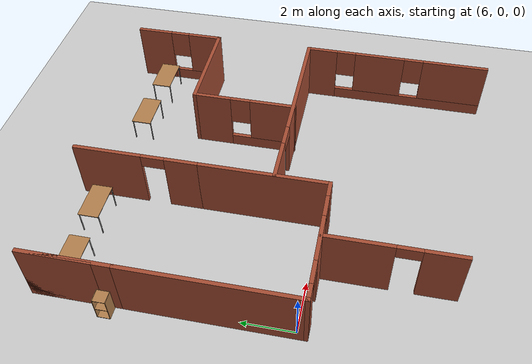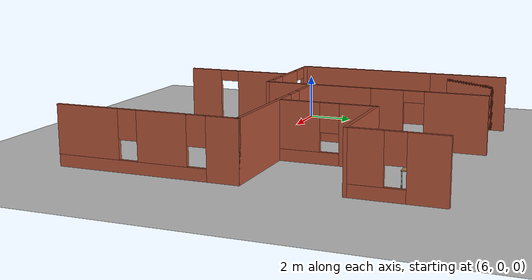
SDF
<sdf version="1.6">
 <world name="default">
  <model name="ground_plane">
   <static>1</static>
   <link name="link">
    <collision name="collision">
     <geometry><plane><normal>0 0 1</normal><size>100 100</size></plane></geometry>
     <surface>
      <contact><collide_bitmask>65535</collide_bitmask></contact>
      <friction><ode><mu>100</mu><mu2>50</mu2></ode></friction>
     </surface>
    </collision>
    <visual name="visual">
     <cast_shadows>0</cast_shadows>
     <geometry><plane><normal>0 0 1</normal><size>100 100</size></plane></geometry>
     <material>
      <script><uri>file://media/materials/scripts/gazebo.material</uri><name>Gazebo/Grey</name></script>
     </material>
    </visual>
   </link>
  </model>
  <model name="office">
   <pose>2.35048 -0.469027 0 0 -0 0</pose>
   <link name="Wall_151">
    <pose>15.9233 8.02933 0 0 0 -1.5708</pose>
    <visual name="Wall_151_Visual_0">
     <pose>-1.12763 0 1.25 0 -0 0</pose>
     <geometry><box><size>1.49474 0.15 2.5</size></box></geometry>
     <material>
      <script><uri>file://media/materials/scripts/gazebo.material</uri><name>Gazebo/Bricks</name></script>
      <ambient>1 1 1 1</ambient>
     </material>
     <meta><layer>0</layer></meta>
    </visual>
    <collision name="Wall_151_Collision_0">
     <geometry><box><size>1.49474 0.15 2.5</size></box></geometry>
     <pose>-1.12763 0 1.25 0 -0 0</pose>
    </collision>
    <visual name="Wall_151_Visual_1">
     <pose>0.747372 0 0.25 0 -0 0</pose>
     <geometry><box><size>2.25526 0.15 0.5</size></box></geometry>
     <material>
      <script><uri>file://media/materials/scripts/gazebo.material</uri><name>Gazebo/Bricks</name></script>
      <ambient>1 1 1 1</ambient>
     </material>
     <meta><layer>0</layer></meta>
    </visual>
    <collision name="Wall_151_Collision_1">
     <geometry><box><size>2.25526 0.15 0.5</size></box></geometry>
     <pose>0.747372 0 0.25 0 -0 0</pose>
    </collision>
    <visual name="Wall_151_Visual_2">
     <pose>1.14737 0 1.5 0 -0 0</pose>
     <geometry><box><size>1.45526 0.15 2</size></box></geometry>
     <material>
      <script><uri>file://media/materials/scripts/gazebo.material</uri><name>Gazebo/Bricks</name></script>
      <ambient>1 1 1 1</ambient>
     </material>
     <meta><layer>0</layer></meta>
    </visual>
    <collision name="Wall_151_Collision_2">
     <geometry><box><size>1.45526 0.15 2</size></box></geometry>
     <pose>1.14737 0 1.5 0 -0 0</pose>
    </collision>
    <visual name="Wall_151_Visual_3">
     <pose>0.019743 0 1.9 0 -0 0</pose>
     <geometry><box><size>0.8 0.15 1.2</size></box></geometry>
     <material>
      <script><uri>file://media/materials/scripts/gazebo.material</uri><name>Gazebo/Bricks</name></script>
      <ambient>1 1 1 1</ambient>
     </material>
     <meta><layer>0</layer></meta>
    </visual>
    <collision name="Wall_151_Collision_3">
     <geometry><box><size>0.8 0.15 1.2</size></box></geometry>
     <pose>0.019743 0 1.9 0 -0 0</pose>
    </collision>
   </link>
   <link name="Wall_152">
    <collision name="Wall_152_Collision">
     <geometry><box><size>4 0.15 2.5</size></box></geometry>
     <pose>0 0 1.25 0 -0 0</pose>
    </collision>
    <visual name="Wall_152_Visual">
     <pose>0 0 1.25 0 -0 0</pose>
     <geometry><box><size>4 0.15 2.5</size></box></geometry>
     <material>
      <script><uri>file://media/materials/scripts/gazebo.material</uri><name>Gazebo/Bricks</name></script>
      <ambient>1 1 1 1</ambient>
     </material>
     <meta><layer>0</layer></meta>
    </visual>
    <pose>13.9983 6.22933 0 0 -0 3.14159</pose>
   </link>
   <link name="Wall_156">
    <pose>12.0733 4.17933 0 0 0 -1.5708</pose>
    <visual name="Wall_156_Visual_0">
     <pose>-1.33794 0 1.25 0 -0 0</pose>
     <geometry><box><size>1.57411 0.15 2.5</size></box></geometry>
     <material>
      <script><uri>file://media/materials/scripts/gazebo.material</uri><name>Gazebo/Bricks</name></script>
      <ambient>1 1 1 1</ambient>
     </material>
     <meta><layer>0</layer></meta>
    </visual>
    <collision name="Wall_156_Collision_0">
     <geometry><box><size>1.57411 0.15 2.5</size></box></geometry>
     <pose>-1.33794 0 1.25 0 -0 0</pose>
    </collision>
    <visual name="Wall_156_Visual_1">
     <pose>0.787055 0 0.25 0 -0 0</pose>
     <geometry><box><size>2.67589 0.15 0.5</size></box></geometry>
     <material>
      <script><uri>file://media/materials/scripts/gazebo.material</uri><name>Gazebo/Bricks</name></script>
      <ambient>1 1 1 1</ambient>
     </material>
     <meta><layer>0</layer></meta>
    </visual>
    <collision name="Wall_156_Collision_1">
     <geometry><box><size>2.67589 0.15 0.5</size></box></geometry>
     <pose>0.787055 0 0.25 0 -0 0</pose>
    </collision>
    <visual name="Wall_156_Visual_2">
     <pose>1.18705 0 1.5 0 -0 0</pose>
     <geometry><box><size>1.87589 0.15 2</size></box></geometry>
     <material>
      <script><uri>file://media/materials/scripts/gazebo.material</uri><name>Gazebo/Bricks</name></script>
      <ambient>1 1 1 1</ambient>
     </material>
     <meta><layer>0</layer></meta>
    </visual>
    <collision name="Wall_156_Collision_2">
     <geometry><box><size>1.87589 0.15 2</size></box></geometry>
     <pose>1.18705 0 1.5 0 -0 0</pose>
    </collision>
    <visual name="Wall_156_Visual_3">
     <pose>-0.150889 0 1.9 0 -0 0</pose>
     <geometry><box><size>0.8 0.15 1.2</size></box></geometry>
     <material>
      <script><uri>file://media/materials/scripts/gazebo.material</uri><name>Gazebo/Bricks</name></script>
      <ambient>1 1 1 1</ambient>
     </material>
     <meta><layer>0</layer></meta>
    </visual>
    <collision name="Wall_156_Collision_3">
     <geometry><box><size>0.8 0.15 1.2</size></box></geometry>
     <pose>-0.150889 0 1.9 0 -0 0</pose>
    </collision>
   </link>
   <link name="Wall_16">
    <pose>8.32342 7.4043 0 0 0 -1.57075</pose>
    <visual name="Wall_16_Visual_0">
     <pose>-1.16357 0 1.25 0 -0 0</pose>
     <geometry><box><size>2.67286 0.15 2.5</size></box></geometry>
     <material>
      <script><uri>file://media/materials/scripts/gazebo.material</uri><name>Gazebo/Bricks</name></script>
      <ambient>0 0 1 1</ambient>
     </material>
     <meta><layer>0</layer></meta>
    </visual>
    <collision name="Wall_16_Collision_0">
     <geometry><box><size>2.67286 0.15 2.5</size></box></geometry>
     <pose>-1.16357 0 1.25 0 -0 0</pose>
    </collision>
    <visual name="Wall_16_Visual_1">
     <pose>1.78643 0 1.25 0 -0 0</pose>
     <geometry><box><size>1.42714 0.15 2.5</size></box></geometry>
     <material>
      <script><uri>file://media/materials/scripts/gazebo.material</uri><name>Gazebo/Bricks</name></script>
      <ambient>0 0 1 1</ambient>
     </material>
     <meta><layer>0</layer></meta>
    </visual>
    <collision name="Wall_16_Collision_1">
     <geometry><box><size>1.42714 0.15 2.5</size></box></geometry>
     <pose>1.78643 0 1.25 0 -0 0</pose>
    </collision>
    <visual name="Wall_16_Visual_2">
     <pose>0.622857 0 2.25 0 -0 0</pose>
     <geometry><box><size>0.9 0.15 0.5</size></box></geometry>
     <material>
      <script><uri>file://media/materials/scripts/gazebo.material</uri><name>Gazebo/Bricks</name></script>
      <ambient>0 0 1 1</ambient>
     </material>
     <meta><layer>0</layer></meta>
    </visual>
    <collision name="Wall_16_Collision_2">
     <geometry><box><size>0.9 0.15 0.5</size></box></geometry>
     <pose>0.622857 0 2.25 0 -0 0</pose>
    </collision>
   </link>
   <link name="Wall_17">
    <collision name="Wall_17_Collision">
     <geometry><box><size>5 0.15 2.5</size></box></geometry>
     <pose>0 0 1.25 0 -0 0</pose>
    </collision>
    <visual name="Wall_17_Visual">
     <pose>0 0 1.25 0 -0 0</pose>
     <geometry><box><size>5 0.15 2.5</size></box></geometry>
     <material>
      <script><uri>file://media/materials/scripts/gazebo.material</uri><name>Gazebo/Bricks</name></script>
      <ambient>0 0 1 1</ambient>
     </material>
     <meta><layer>0</layer></meta>
    </visual>
    <pose>8.32352 2.55427 0 0 0 -1.5708</pose>
   </link>
   <link name="Wall_18">
    <pose>5.89852 0.129271 0 0 -0 3.14159</pose>
    <visual name="Wall_18_Visual_0">
     <pose>-2.16272 0 1.25 0 -0 0</pose>
     <geometry><box><size>0.674563 0.15 2.5</size></box></geometry>
     <material>
      <script><uri>file://media/materials/scripts/gazebo.material</uri><name>Gazebo/Bricks</name></script>
      <ambient>0 0 1 1</ambient>
     </material>
     <meta><layer>0</layer></meta>
    </visual>
    <collision name="Wall_18_Collision_0">
     <geometry><box><size>0.674563 0.15 2.5</size></box></geometry>
     <pose>-2.16272 0 1.25 0 -0 0</pose>
    </collision>
    <visual name="Wall_18_Visual_1">
     <pose>0.007773 0 1.25 0 -0 0</pose>
     <geometry><box><size>1.86642 0.15 2.5</size></box></geometry>
     <material>
      <script><uri>file://media/materials/scripts/gazebo.material</uri><name>Gazebo/Bricks</name></script>
      <ambient>0 0 1 1</ambient>
     </material>
     <meta><layer>0</layer></meta>
    </visual>
    <collision name="Wall_18_Collision_1">
     <geometry><box><size>1.86642 0.15 2.5</size></box></geometry>
     <pose>0.007773 0 1.25 0 -0 0</pose>
    </collision>
    <visual name="Wall_18_Visual_2">
     <pose>2.17049 0 1.25 0 -0 0</pose>
     <geometry><box><size>0.659016 0.15 2.5</size></box></geometry>
     <material>
      <script><uri>file://media/materials/scripts/gazebo.material</uri><name>Gazebo/Bricks</name></script>
      <ambient>0 0 1 1</ambient>
     </material>
     <meta><layer>0</layer></meta>
    </visual>
    <collision name="Wall_18_Collision_2">
     <geometry><box><size>0.659016 0.15 2.5</size></box></geometry>
     <pose>2.17049 0 1.25 0 -0 0</pose>
    </collision>
    <visual name="Wall_18_Visual_3">
     <pose>-1.37544 0 2.25 0 -0 0</pose>
     <geometry><box><size>0.9 0.15 0.5</size></box></geometry>
     <material>
      <script><uri>file://media/materials/scripts/gazebo.material</uri><name>Gazebo/Bricks</name></script>
      <ambient>0 0 1 1</ambient>
     </material>
     <meta><layer>0</layer></meta>
    </visual>
    <collision name="Wall_18_Collision_3">
     <geometry><box><size>0.9 0.15 0.5</size></box></geometry>
     <pose>-1.37544 0 2.25 0 -0 0</pose>
    </collision>
    <visual name="Wall_18_Visual_4">
     <pose>1.39098 0 2.25 0 -0 0</pose>
     <geometry><box><size>0.9 0.15 0.5</size></box></geometry>
     <material>
      <script><uri>file://media/materials/scripts/gazebo.material</uri><name>Gazebo/Bricks</name></script>
      <ambient>0 0 1 1</ambient>
     </material>
     <meta><layer>0</layer></meta>
    </visual>
    <collision name="Wall_18_Collision_4">
     <geometry><box><size>0.9 0.15 0.5</size></box></geometry>
     <pose>1.39098 0 2.25 0 -0 0</pose>
    </collision>
   </link>
   <link name="Wall_19">
    <collision name="Wall_19_Collision">
     <geometry><box><size>6.5 0.15 2.5</size></box></geometry>
     <pose>0 0 1.25 0 -0 0</pose>
    </collision>
    <visual name="Wall_19_Visual">
     <pose>0 0 1.25 0 -0 0</pose>
     <geometry><box><size>6.5 0.15 2.5</size></box></geometry>
     <material>
      <script><uri>file://media/materials/scripts/gazebo.material</uri><name>Gazebo/Bricks</name></script>
      <ambient>0 0 1 1</ambient>
     </material>
     <meta><layer>0</layer></meta>
    </visual>
    <pose>3.47352 3.30427 0 0 -0 1.5708</pose>
   </link>
   <link name="Wall_20">
    <pose>3.47342 8.1543 0 0 -0 1.57086</pose>
    <visual name="Wall_20_Visual_0">
     <pose>0 0 1.25 0 -0 0</pose>
     <geometry><box><size>3.5 0.15 2.5</size></box></geometry>
     <material>
      <script><uri>file://media/materials/scripts/gazebo.material</uri><name>Gazebo/Bricks</name></script>
      <ambient>0 0 1 1</ambient>
     </material>
     <meta><layer>0</layer></meta>
    </visual>
    <collision name="Wall_20_Collision_0">
     <geometry><box><size>3.5 0.15 2.5</size></box></geometry>
     <pose>0 0 1.25 0 -0 0</pose>
    </collision>
    <visual name="Wall_20_Visual_1">
     <pose>0.400263 0 1.25 0 -0 0</pose>
     <geometry><box><size>2.69948 0.15 2.5</size></box></geometry>
     <material>
      <script><uri>file://media/materials/scripts/gazebo.material</uri><name>Gazebo/Bricks</name></script>
      <ambient>0 0 1 1</ambient>
     </material>
     <meta><layer>0</layer></meta>
    </visual>
    <collision name="Wall_20_Collision_1">
     <geometry><box><size>2.69948 0.15 2.5</size></box></geometry>
     <pose>0.400263 0 1.25 0 -0 0</pose>
    </collision>
   </link>
   <link name="Wall_22">
    <pose>5.99314 -2.33064 0 0 0 -1.5708</pose>
    <visual name="Wall_22_Visual_0">
     <pose>-1.21642 0 1.25 0 -0 0</pose>
     <geometry><box><size>2.56715 0.15 2.5</size></box></geometry>
     <material>
      <script><uri>file://media/materials/scripts/gazebo.material</uri><name>Gazebo/Bricks</name></script>
      <ambient>1 1 1 1</ambient>
     </material>
     <meta><layer>0</layer></meta>
    </visual>
    <collision name="Wall_22_Collision_0">
     <geometry><box><size>2.56715 0.15 2.5</size></box></geometry>
     <pose>-1.21642 0 1.25 0 -0 0</pose>
    </collision>
    <visual name="Wall_22_Visual_1">
     <pose>1.73358 0 1.25 0 -0 0</pose>
     <geometry><box><size>1.53285 0.15 2.5</size></box></geometry>
     <material>
      <script><uri>file://media/materials/scripts/gazebo.material</uri><name>Gazebo/Bricks</name></script>
      <ambient>1 1 1 1</ambient>
     </material>
     <meta><layer>0</layer></meta>
    </visual>
    <collision name="Wall_22_Collision_1">
     <geometry><box><size>1.53285 0.15 2.5</size></box></geometry>
     <pose>1.73358 0 1.25 0 -0 0</pose>
    </collision>
    <visual name="Wall_22_Visual_2">
     <pose>0.517152 0 2.25 0 -0 0</pose>
     <geometry><box><size>0.9 0.15 0.5</size></box></geometry>
     <material>
      <script><uri>file://media/materials/scripts/gazebo.material</uri><name>Gazebo/Bricks</name></script>
      <ambient>1 1 1 1</ambient>
     </material>
     <meta><layer>0</layer></meta>
    </visual>
    <collision name="Wall_22_Collision_2">
     <geometry><box><size>0.9 0.15 0.5</size></box></geometry>
     <pose>0.517152 0 2.25 0 -0 0</pose>
    </collision>
   </link>
   <link name="Wall_39">
    <pose>12.1535 2.1646 0 0 -0 0</pose>
    <visual name="Wall_39_Visual_0">
     <pose>-3.02338 0 1.25 0 -0 0</pose>
     <geometry><box><size>1.70324 0.15 2.5</size></box></geometry>
     <material>
      <script><uri>file://media/materials/scripts/gazebo.material</uri><name>Gazebo/Bricks</name></script>
      <ambient>1 1 1 1</ambient>
     </material>
     <meta><layer>0</layer></meta>
    </visual>
    <collision name="Wall_39_Collision_0">
     <geometry><box><size>1.70324 0.15 2.5</size></box></geometry>
     <pose>-3.02338 0 1.25 0 -0 0</pose>
    </collision>
    <visual name="Wall_39_Visual_1">
     <pose>1.30162 0 1.25 0 -0 0</pose>
     <geometry><box><size>5.14676 0.15 2.5</size></box></geometry>
     <material>
      <script><uri>file://media/materials/scripts/gazebo.material</uri><name>Gazebo/Bricks</name></script>
      <ambient>1 1 1 1</ambient>
     </material>
     <meta><layer>0</layer></meta>
    </visual>
    <collision name="Wall_39_Collision_1">
     <geometry><box><size>5.14676 0.15 2.5</size></box></geometry>
     <pose>1.30162 0 1.25 0 -0 0</pose>
    </collision>
    <visual name="Wall_39_Visual_2">
     <pose>-1.72176 0 2.25 0 -0 0</pose>
     <geometry><box><size>0.9 0.15 0.5</size></box></geometry>
     <material>
      <script><uri>file://media/materials/scripts/gazebo.material</uri><name>Gazebo/Bricks</name></script>
      <ambient>1 1 1 1</ambient>
     </material>
     <meta><layer>0</layer></meta>
    </visual>
    <collision name="Wall_39_Collision_2">
     <geometry><box><size>0.9 0.15 0.5</size></box></geometry>
     <pose>-1.72176 0 2.25 0 -0 0</pose>
    </collision>
   </link>
   <link name="Wall_40">
    <pose>15.9535 -1.6354 0 0 0 -1.5708</pose>
    <visual name="Wall_40_Visual_0">
     <pose>-3.20987 0 1.25 0 -0 0</pose>
     <geometry><box><size>1.33026 0.15 2.5</size></box></geometry>
     <material>
      <script><uri>file://media/materials/scripts/gazebo.material</uri><name>Gazebo/Bricks</name></script>
      <ambient>1 1 1 1</ambient>
     </material>
     <meta><layer>0</layer></meta>
    </visual>
    <collision name="Wall_40_Collision_0">
     <geometry><box><size>1.33026 0.15 2.5</size></box></geometry>
     <pose>-3.20987 0 1.25 0 -0 0</pose>
    </collision>
    <visual name="Wall_40_Visual_1">
     <pose>0.665129 0 0.25 0 -0 0</pose>
     <geometry><box><size>6.41974 0.15 0.5</size></box></geometry>
     <material>
      <script><uri>file://media/materials/scripts/gazebo.material</uri><name>Gazebo/Bricks</name></script>
      <ambient>1 1 1 1</ambient>
     </material>
     <meta><layer>0</layer></meta>
    </visual>
    <collision name="Wall_40_Collision_1">
     <geometry><box><size>6.41974 0.15 0.5</size></box></geometry>
     <pose>0.665129 0 0.25 0 -0 0</pose>
    </collision>
    <visual name="Wall_40_Visual_2">
     <pose>-0.694223 0 1.5 0 -0 0</pose>
     <geometry><box><size>2.10104 0.15 2</size></box></geometry>
     <material>
      <script><uri>file://media/materials/scripts/gazebo.material</uri><name>Gazebo/Bricks</name></script>
      <ambient>1 1 1 1</ambient>
     </material>
     <meta><layer>0</layer></meta>
    </visual>
    <collision name="Wall_40_Collision_2">
     <geometry><box><size>2.10104 0.15 2</size></box></geometry>
     <pose>-0.694223 0 1.5 0 -0 0</pose>
    </collision>
    <visual name="Wall_40_Visual_3">
     <pose>2.51565 0 1.5 0 -0 0</pose>
     <geometry><box><size>2.7187 0.15 2</size></box></geometry>
     <material>
      <script><uri>file://media/materials/scripts/gazebo.material</uri><name>Gazebo/Bricks</name></script>
      <ambient>1 1 1 1</ambient>
     </material>
     <meta><layer>0</layer></meta>
    </visual>
    <collision name="Wall_40_Collision_3">
     <geometry><box><size>2.7187 0.15 2</size></box></geometry>
     <pose>2.51565 0 1.5 0 -0 0</pose>
    </collision>
    <visual name="Wall_40_Visual_4">
     <pose>-2.14474 0 1.9 0 -0 0</pose>
     <geometry><box><size>0.8 0.15 1.2</size></box></geometry>
     <material>
      <script><uri>file://media/materials/scripts/gazebo.material</uri><name>Gazebo/Bricks</name></script>
      <ambient>1 1 1 1</ambient>
     </material>
     <meta><layer>0</layer></meta>
    </visual>
    <collision name="Wall_40_Collision_4">
     <geometry><box><size>0.8 0.15 1.2</size></box></geometry>
     <pose>-2.14474 0 1.9 0 -0 0</pose>
    </collision>
    <visual name="Wall_40_Visual_5">
     <pose>0.756297 0 1.9 0 -0 0</pose>
     <geometry><box><size>0.8 0.15 1.2</size></box></geometry>
     <material>
      <script><uri>file://media/materials/scripts/gazebo.material</uri><name>Gazebo/Bricks</name></script>
      <ambient>1 1 1 1</ambient>
     </material>
     <meta><layer>0</layer></meta>
    </visual>
    <collision name="Wall_40_Collision_5">
     <geometry><box><size>0.8 0.15 1.2</size></box></geometry>
     <pose>0.756297 0 1.9 0 -0 0</pose>
    </collision>
   </link>
   <static>1</static>
  </model>
  <model name="cabinet">
   <static>1</static>
   <link name="cabinet_bottom_plate">
    <inertial>
     <pose>0 0 -1 0 -0 0</pose>
     <inertia><ixx>2.05</ixx><ixy>0</ixy><ixz>0</ixz><iyy>2.05</iyy><iyz>0</iyz><izz>2.05</izz></inertia>
     <mass>25</mass>
    </inertial>
    <collision name="cabinet_bottom_plate_geom">
     <pose>0 0 0.01 0 -0 0</pose>
     <geometry><box><size>0.45 0.45 0.02</size></box></geometry>
    </collision>
    <visual name="cabinet_bottom_plate_geom_visual">
     <pose>0 0 0.01 0 -0 0</pose>
     <geometry><box><size>0.45 0.45 0.02</size></box></geometry>
     <material>
      <script><uri>file://media/materials/scripts/gazebo.material</uri><name>Gazebo/Wood</name></script>
     </material>
    </visual>
    <collision name="cabinet_bottom_plate_geom_cabinet_back_plate">
     <pose>0.235 0 0.51 0 -0 0</pose>
     <geometry><box><size>0.02 0.45 1.02</size></box></geometry>
    </collision>
    <visual name="cabinet_bottom_plate_geom_cabinet_back_plate_visual">
     <pose>0.235 0 0.51 0 -0 0</pose>
     <geometry><box><size>0.02 0.45 1.02</size></box></geometry>
     <material>
      <script><uri>file://media/materials/scripts/gazebo.material</uri><name>Gazebo/Wood</name></script>
     </material>
    </visual>
    <collision name="cabinet_bottom_plate_geom_cabinet_left_plate">
     <pose>0 0.235 0.51 0 -0 0</pose>
     <geometry><box><size>0.45 0.02 1.02</size></box></geometry>
    </collision>
    <visual name="cabinet_bottom_plate_geom_cabinet_left_plate_visual">
     <pose>0 0.235 0.51 0 -0 0</pose>
     <geometry><box><size>0.45 0.02 1.02</size></box></geometry>
     <material>
      <script><uri>file://media/materials/scripts/gazebo.material</uri><name>Gazebo/Wood</name></script>
     </material>
    </visual>
    <collision name="cabinet_bottom_plate_geom_cabinet_middle_plate">
     <pose>0 0 0.51 0 -0 0</pose>
     <geometry><box><size>0.45 0.45 0.02</size></box></geometry>
    </collision>
    <visual name="cabinet_bottom_plate_geom_cabinet_middle_plate_visual">
     <pose>0 0 0.51 0 -0 0</pose>
     <geometry><box><size>0.45 0.45 0.02</size></box></geometry>
     <material>
      <script><uri>file://media/materials/scripts/gazebo.material</uri><name>Gazebo/Wood</name></script>
     </material>
    </visual>
    <collision name="cabinet_bottom_plate_geom_cabinet_right_plate">
     <pose>0 -0.235 0.51 0 -0 0</pose>
     <geometry><box><size>0.45 0.02 1.02</size></box></geometry>
    </collision>
    <visual name="cabinet_bottom_plate_geom_cabinet_right_plate_visual">
     <pose>0 -0.235 0.51 0 -0 0</pose>
     <geometry><box><size>0.45 0.02 1.02</size></box></geometry>
     <material>
      <script><uri>file://media/materials/scripts/gazebo.material</uri><name>Gazebo/Wood</name></script>
     </material>
    </visual>
    <collision name="cabinet_bottom_plate_geom_cabinet_top_plate">
     <pose>0 0 1.01 0 -0 0</pose>
     <geometry><box><size>0.45 0.45 0.02</size></box></geometry>
    </collision>
    <visual name="cabinet_bottom_plate_geom_cabinet_top_plate_visual">
     <pose>0 0 1.01 0 -0 0</pose>
     <geometry><box><size>0.45 0.45 0.02</size></box></geometry>
     <material>
      <script><uri>file://media/materials/scripts/gazebo.material</uri><name>Gazebo/Wood</name></script>
     </material>
    </visual>
   </link>
   <pose>5.5098 6.59656 0 0 -0 0</pose>
  </model>
  <model name="table_clone_0">
   <static>1</static>
   <link name="link">
    <collision name="surface">
     <pose>0 0 1 0 -0 0</pose>
     <geometry><box><size>1.5 0.8 0.03</size></box></geometry>
     <surface><friction><ode><mu>0.6</mu><mu2>0.6</mu2></ode></friction></surface>
    </collision>
    <visual name="visual1">
     <pose>0 0 1 0 -0 0</pose>
     <geometry><box><size>1.5 0.8 0.03</size></box></geometry>
     <material>
      <script><uri>file://media/materials/scripts/gazebo.material</uri><name>Gazebo/Wood</name></script>
     </material>
    </visual>
    <collision name="front_left_leg">
     <pose>0.68 0.38 0.5 0 -0 0</pose>
     <geometry><cylinder><radius>0.02</radius><length>1</length></cylinder></geometry>
    </collision>
    <visual name="front_left_leg">
     <pose>0.68 0.38 0.5 0 -0 0</pose>
     <geometry><cylinder><radius>0.02</radius><length>1</length></cylinder></geometry>
     <material>
      <script><uri>file://media/materials/scripts/gazebo.material</uri><name>Gazebo/Grey</name></script>
     </material>
    </visual>
    <collision name="front_right_leg">
     <pose>0.68 -0.38 0.5 0 -0 0</pose>
     <geometry><cylinder><radius>0.02</radius><length>1</length></cylinder></geometry>
    </collision>
    <visual name="front_right_leg">
     <pose>0.68 -0.38 0.5 0 -0 0</pose>
     <geometry><cylinder><radius>0.02</radius><length>1</length></cylinder></geometry>
     <material>
      <script><uri>file://media/materials/scripts/gazebo.material</uri><name>Gazebo/Grey</name></script>
     </material>
    </visual>
    <collision name="back_right_leg">
     <pose>-0.68 -0.38 0.5 0 -0 0</pose>
     <geometry><cylinder><radius>0.02</radius><length>1</length></cylinder></geometry>
    </collision>
    <visual name="back_right_leg">
     <pose>-0.68 -0.38 0.5 0 -0 0</pose>
     <geometry><cylinder><radius>0.02</radius><length>1</length></cylinder></geometry>
     <material>
      <script><uri>file://media/materials/scripts/gazebo.material</uri><name>Gazebo/Grey</name></script>
     </material>
    </visual>
    <collision name="back_left_leg">
     <pose>-0.68 0.38 0.5 0 -0 0</pose>
     <geometry><cylinder><radius>0.02</radius><length>1</length></cylinder></geometry>
    </collision>
    <visual name="back_left_leg">
     <pose>-0.68 0.38 0.5 0 -0 0</pose>
     <geometry><cylinder><radius>0.02</radius><length>1</length></cylinder></geometry>
     <material>
      <script><uri>file://media/materials/scripts/gazebo.material</uri><name>Gazebo/Grey</name></script>
     </material>
    </visual>
   </link>
   <pose>6.98966 8.26719 0 0 -0 0</pose>
  </model>
  <model name="table_clone_1">
   <static>1</static>
   <link name="link">
    <collision name="surface">
     <pose>0 0 1 0 -0 0</pose>
     <geometry><box><size>1.5 0.8 0.03</size></box></geometry>
     <surface><friction><ode><mu>0.6</mu><mu2>0.6</mu2></ode></friction></surface>
    </collision>
    <visual name="visual1">
     <pose>0 0 1 0 -0 0</pose>
     <geometry><box><size>1.5 0.8 0.03</size></box></geometry>
     <material>
      <script><uri>file://media/materials/scripts/gazebo.material</uri><name>Gazebo/Wood</name></script>
     </material>
    </visual>
    <collision name="front_left_leg">
     <pose>0.68 0.38 0.5 0 -0 0</pose>
     <geometry><cylinder><radius>0.02</radius><length>1</length></cylinder></geometry>
    </collision>
    <visual name="front_left_leg">
     <pose>0.68 0.38 0.5 0 -0 0</pose>
     <geometry><cylinder><radius>0.02</radius><length>1</length></cylinder></geometry>
     <material>
      <script><uri>file://media/materials/scripts/gazebo.material</uri><name>Gazebo/Grey</name></script>
     </material>
    </visual>
    <collision name="front_right_leg">
     <pose>0.68 -0.38 0.5 0 -0 0</pose>
     <geometry><cylinder><radius>0.02</radius><length>1</length></cylinder></geometry>
    </collision>
    <visual name="front_right_leg">
     <pose>0.68 -0.38 0.5 0 -0 0</pose>
     <geometry><cylinder><radius>0.02</radius><length>1</length></cylinder></geometry>
     <material>
      <script><uri>file://media/materials/scripts/gazebo.material</uri><name>Gazebo/Grey</name></script>
     </material>
    </visual>
    <collision name="back_right_leg">
     <pose>-0.68 -0.38 0.5 0 -0 0</pose>
     <geometry><cylinder><radius>0.02</radius><length>1</length></cylinder></geometry>
    </collision>
    <visual name="back_right_leg">
     <pose>-0.68 -0.38 0.5 0 -0 0</pose>
     <geometry><cylinder><radius>0.02</radius><length>1</length></cylinder></geometry>
     <material>
      <script><uri>file://media/materials/scripts/gazebo.material</uri><name>Gazebo/Grey</name></script>
     </material>
    </visual>
    <collision name="back_left_leg">
     <pose>-0.68 0.38 0.5 0 -0 0</pose>
     <geometry><cylinder><radius>0.02</radius><length>1</length></cylinder></geometry>
    </collision>
    <visual name="back_left_leg">
     <pose>-0.68 0.38 0.5 0 -0 0</pose>
     <geometry><cylinder><radius>0.02</radius><length>1</length></cylinder></geometry>
     <material>
      <script><uri>file://media/materials/scripts/gazebo.material</uri><name>Gazebo/Grey</name></script>
     </material>
    </visual>
   </link>
   <pose>9.41994 8.3508 0 0 -0 0</pose>
  </model>
  <model name="table_clone_2">
   <static>1</static>
   <link name="link">
    <collision name="surface">
     <pose>0 0 1 0 -0 0</pose>
     <geometry><box><size>1.5 0.8 0.03</size></box></geometry>
     <surface><friction><ode><mu>0.6</mu><mu2>0.6</mu2></ode></friction></surface>
    </collision>
    <visual name="visual1">
     <pose>0 0 1 0 -0 0</pose>
     <geometry><box><size>1.5 0.8 0.03</size></box></geometry>
     <material>
      <script><uri>file://media/materials/scripts/gazebo.material</uri><name>Gazebo/Wood</name></script>
     </material>
    </visual>
    <collision name="front_left_leg">
     <pose>0.68 0.38 0.5 0 -0 0</pose>
     <geometry><cylinder><radius>0.02</radius><length>1</length></cylinder></geometry>
    </collision>
    <visual name="front_left_leg">
     <pose>0.68 0.38 0.5 0 -0 0</pose>
     <geometry><cylinder><radius>0.02</radius><length>1</length></cylinder></geometry>
     <material>
      <script><uri>file://media/materials/scripts/gazebo.material</uri><name>Gazebo/Grey</name></script>
     </material>
    </visual>
    <collision name="front_right_leg">
     <pose>0.68 -0.38 0.5 0 -0 0</pose>
     <geometry><cylinder><radius>0.02</radius><length>1</length></cylinder></geometry>
    </collision>
    <visual name="front_right_leg">
     <pose>0.68 -0.38 0.5 0 -0 0</pose>
     <geometry><cylinder><radius>0.02</radius><length>1</length></cylinder></geometry>
     <material>
      <script><uri>file://media/materials/scripts/gazebo.material</uri><name>Gazebo/Grey</name></script>
     </material>
    </visual>
    <collision name="back_right_leg">
     <pose>-0.68 -0.38 0.5 0 -0 0</pose>
     <geometry><cylinder><radius>0.02</radius><length>1</length></cylinder></geometry>
    </collision>
    <visual name="back_right_leg">
     <pose>-0.68 -0.38 0.5 0 -0 0</pose>
     <geometry><cylinder><radius>0.02</radius><length>1</length></cylinder></geometry>
     <material>
      <script><uri>file://media/materials/scripts/gazebo.material</uri><name>Gazebo/Grey</name></script>
     </material>
    </visual>
    <collision name="back_left_leg">
     <pose>-0.68 0.38 0.5 0 -0 0</pose>
     <geometry><cylinder><radius>0.02</radius><length>1</length></cylinder></geometry>
    </collision>
    <visual name="back_left_leg">
     <pose>-0.68 0.38 0.5 0 -0 0</pose>
     <geometry><cylinder><radius>0.02</radius><length>1</length></cylinder></geometry>
     <material>
      <script><uri>file://media/materials/scripts/gazebo.material</uri><name>Gazebo/Grey</name></script>
     </material>
    </visual>
   </link>
   <pose>17.0492 8.00615 0 0 -0 0</pose>
  </model>
  <model name="table_clone_3">
   <static>1</static>
   <link name="link">
    <collision name="surface">
     <pose>0 0 1 0 -0 0</pose>
     <geometry><box><size>1.5 0.8 0.03</size></box></geometry>
     <surface><friction><ode><mu>0.6</mu><mu2>0.6</mu2></ode></friction></surface>
    </collision>
    <visual name="visual1">
     <pose>0 0 1 0 -0 0</pose>
     <geometry><box><size>1.5 0.8 0.03</size></box></geometry>
     <material>
      <script><uri>file://media/materials/scripts/gazebo.material</uri><name>Gazebo/Wood</name></script>
     </material>
    </visual>
    <collision name="front_left_leg">
     <pose>0.68 0.38 0.5 0 -0 0</pose>
     <geometry><cylinder><radius>0.02</radius><length>1</length></cylinder></geometry>
    </collision>
    <visual name="front_left_leg">
     <pose>0.68 0.38 0.5 0 -0 0</pose>
     <geometry><cylinder><radius>0.02</radius><length>1</length></cylinder></geometry>
     <material>
      <script><uri>file://media/materials/scripts/gazebo.material</uri><name>Gazebo/Grey</name></script>
     </material>
    </visual>
    <collision name="front_right_leg">
     <pose>0.68 -0.38 0.5 0 -0 0</pose>
     <geometry><cylinder><radius>0.02</radius><length>1</length></cylinder></geometry>
    </collision>
    <visual name="front_right_leg">
     <pose>0.68 -0.38 0.5 0 -0 0</pose>
     <geometry><cylinder><radius>0.02</radius><length>1</length></cylinder></geometry>
     <material>
      <script><uri>file://media/materials/scripts/gazebo.material</uri><name>Gazebo/Grey</name></script>
     </material>
    </visual>
    <collision name="back_right_leg">
     <pose>-0.68 -0.38 0.5 0 -0 0</pose>
     <geometry><cylinder><radius>0.02</radius><length>1</length></cylinder></geometry>
    </collision>
    <visual name="back_right_leg">
     <pose>-0.68 -0.38 0.5 0 -0 0</pose>
     <geometry><cylinder><radius>0.02</radius><length>1</length></cylinder></geometry>
     <material>
      <script><uri>file://media/materials/scripts/gazebo.material</uri><name>Gazebo/Grey</name></script>
     </material>
    </visual>
    <collision name="back_left_leg">
     <pose>-0.68 0.38 0.5 0 -0 0</pose>
     <geometry><cylinder><radius>0.02</radius><length>1</length></cylinder></geometry>
    </collision>
    <visual name="back_left_leg">
     <pose>-0.68 0.38 0.5 0 -0 0</pose>
     <geometry><cylinder><radius>0.02</radius><length>1</length></cylinder></geometry>
     <material>
      <script><uri>file://media/materials/scripts/gazebo.material</uri><name>Gazebo/Grey</name></script>
     </material>
    </visual>
   </link>
   <pose>14.601 8.08998 0 0 -0 0</pose>
  </model>
 </world>
</sdf>
